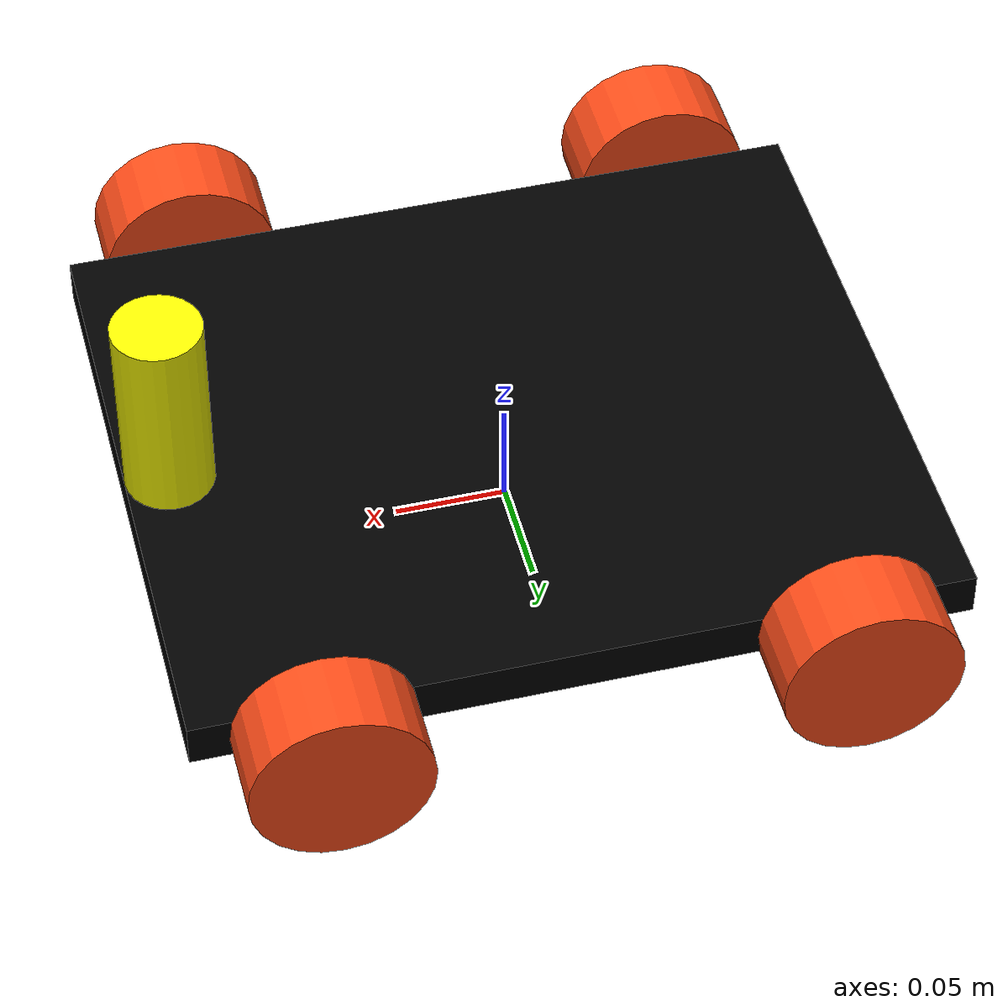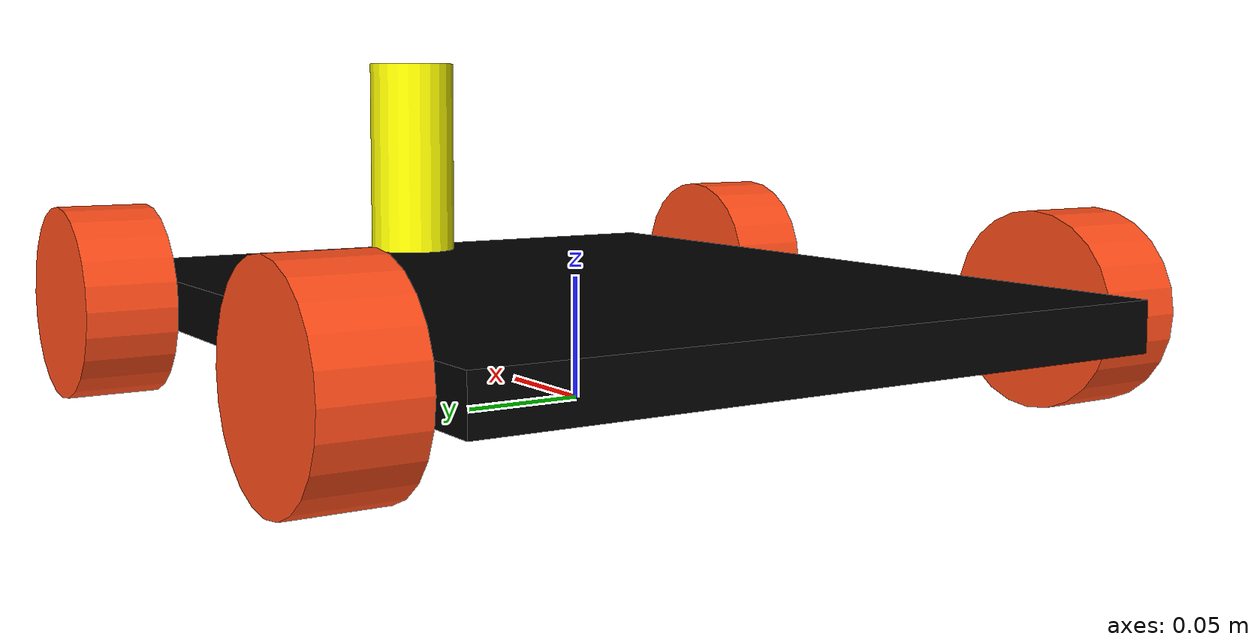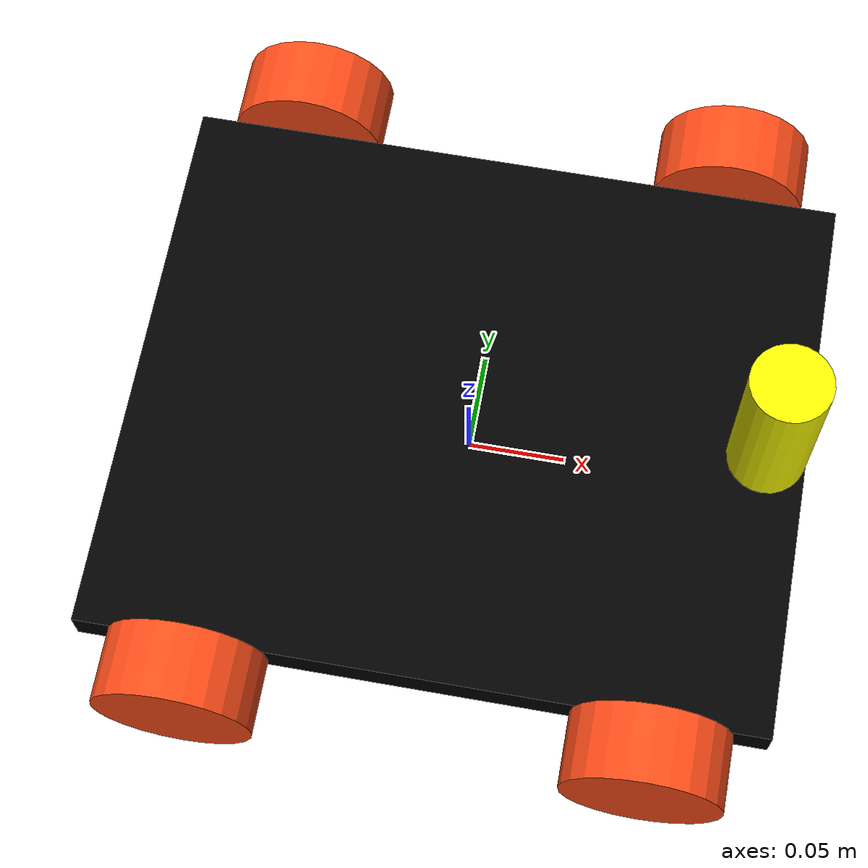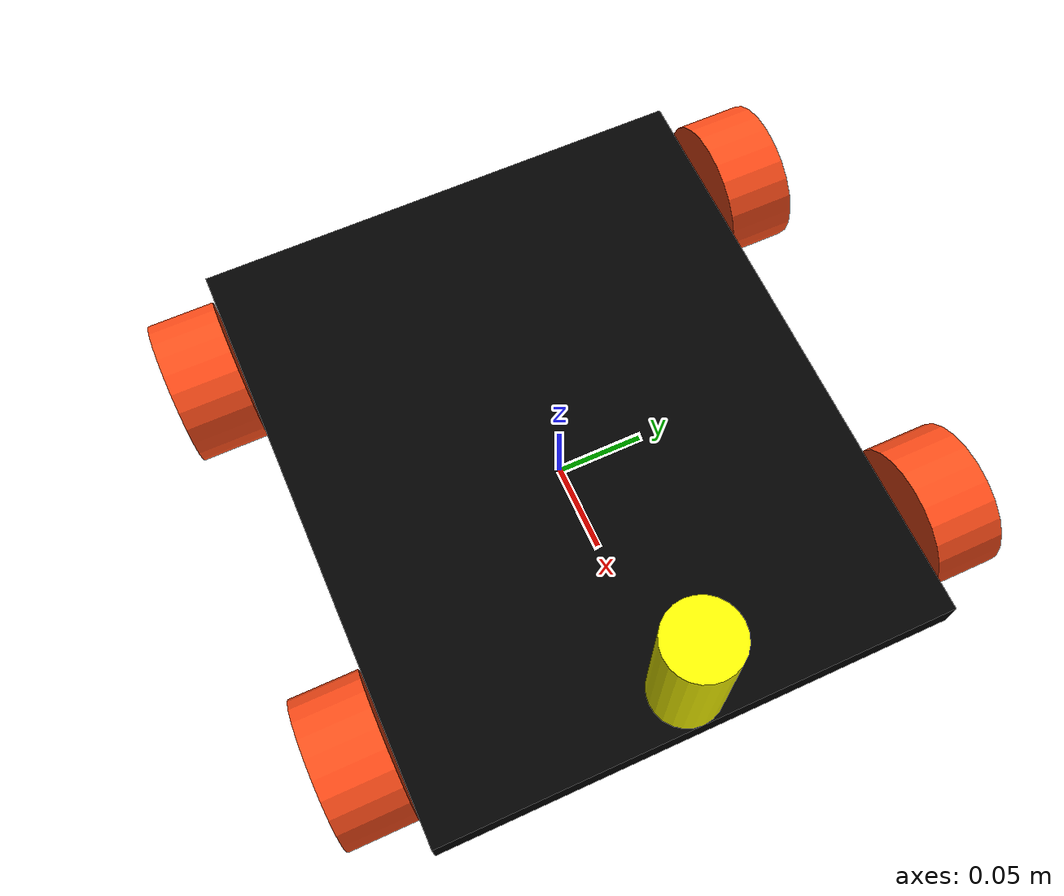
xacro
<?xml version="1.0"?>
<robot name="ugv" xmlns:xacro="http://www.ros.org/wiki/xacro">

    <xacro:arg name="is_sim" default="true"/>
    <xacro:include filename="$(find ugv_description)/urdf/ugv.macro.xacro"/>
    <xacro:ugv is_sim="$is_sim"/>

    <xacro:if value="$(arg is_sim)">
        <xacro:include filename="$(find ugv_control)/urdf/gazebo_control.xacro"/>
    </xacro:if>
    <xacro:unless value="$(arg is_sim)">
        <xacro:include filename="$(find ugv_control)/urdf/ros2_control.xacro"/>
    </xacro:unless>

</robot>

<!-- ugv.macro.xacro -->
<robot name="ugv" xmlns:xacro="http://www.ros.org/wiki/xacro">
    <xacro:macro name="ugv" params="is_sim">
        <xacro:include filename="$(find ugv_description)/urdf/ugv_core.xacro"/>

        <xacro:if value="$(arg is_sim)">
            <xacro:include filename="$(find ugv_description)/gazebo/gazebo.xacro"/>
            <xacro:include filename="$(find ugv_description)/gazebo/lidar.xacro"/>
        </xacro:if>

    </xacro:macro>
</robot>

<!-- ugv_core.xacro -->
<robot name="ugv" xmlns:xacro="http://www.ros.org/wiki/xacro">

    <xacro:include filename="$(find ugv_description)/gazebo/common_inertias.xacro" />

    <xacro:property name="wheel_radius" value="0.0395" />
    <xacro:property name="wheel_thickness" value="0.0369" />
    <xacro:property name="wheel_mass" value="0.05" />

    <xacro:property name="chassis_length" value="0.34" />
    <xacro:property name="chassis_width" value="0.285" />
    <xacro:property name="chassis_height" value="0.02" />
    <xacro:property name="chassis_mass" value="1.0" />
    <xacro:property name="chassis_offset_z" value="${wheel_radius}" />

    <xacro:property name="lidar_radius" value="0.02" />
    <xacro:property name="lidar_thickness" value="0.1" />
    <xacro:property name="lidar_mass" value="0.05" />

    <xacro:property name="edge_thickness" value="0.02" />
    <xacro:property name="edge_to_motor_mount" value="0.016" />
    <xacro:property name="motor_mount_width" value="0.0417" />
    <xacro:property name="motor_shaft_to_edge_x" value="${edge_thickness+edge_to_motor_mount+motor_mount_width/2}" />
    <xacro:property name="wheel_offset_x" value="${chassis_length/2-motor_shaft_to_edge_x}" />

    <xacro:property name="wheels_y_distance_edge_to_edge" value=".36"/>
    <xacro:property name="wheel_offset_y" value="${wheels_y_distance_edge_to_edge/2 - wheel_thickness/2}"/>

    <xacro:property name="wheel_offset_z" value="0.01" />

    <material name="orange">
        <color rgba="1 0.3 0.1 1" />
    </material>

    <material name="yellow">
        <color rgba="1 1 0 1" />
    </material>

    <material name="black">
        <color rgba="0 0 0 1" />
    </material>

    <xacro:macro name="wheel" params="prefix">
        <link name="${prefix}_wheel">
            <visual>
                <origin rpy="${pi/2} 0 0" xyz="0 0 0"/>
                <geometry>
                    <cylinder radius="${wheel_radius}" length="${wheel_thickness}" />
                </geometry>
                <material name="orange" />
            </visual>
            <collision>
                <origin rpy="${pi/2} 0 0" xyz="0 0 0"/>
                <geometry>
                    <cylinder radius="${wheel_radius}" length="${wheel_thickness}" />
                </geometry>
            </collision>
            <xacro:inertial_cylinder mass="${wheel_mass}" length="${wheel_thickness}"
                radius="${wheel_radius}">
                <origin xyz="0 0 0" rpy="0 0 0" />
            </xacro:inertial_cylinder>
        </link>
    </xacro:macro>

    <link name="base_link">
        <visual>
            <origin rpy="0 0 0" xyz="0 0 ${chassis_offset_z}"/>
            <geometry>
                <box size="${chassis_length} ${chassis_width} ${chassis_height}" />
            </geometry>
            <material name="black" />
        </visual>
        <collision>
            <origin rpy="0 0 0" xyz="0 0 ${chassis_offset_z}"/>
            <geometry>
                <box size="${chassis_length} ${chassis_width} ${chassis_height}" />
            </geometry>
        </collision>
        <xacro:inertial_box mass="${chassis_mass}" x="${chassis_length}" y="${chassis_width}"
            z="${chassis_height}">
            <origin rpy="0 0 0" xyz="0 0 ${chassis_offset_z}"/>
        </xacro:inertial_box>
    </link>

    <link name="base_footprint" />

    <joint name="base_footprint_joint" type="fixed">
        <parent link="base_link" />
        <child link="base_footprint" />
        <origin xyz="0 0 0" rpy="0 0 0" />
    </joint>

    <xacro:wheel prefix="front_right"  />

    <joint name="front_right_wheel_joint" type="continuous">
        <parent link="base_link" />
        <child link="front_right_wheel" />
        <origin xyz="${wheel_offset_x} ${-wheel_offset_y} ${wheel_radius}" />
        <axis xyz="0.0 1.0 0.0" />
    </joint>

    <xacro:wheel prefix="front_left" />

    <joint name="front_left_wheel_joint" type="continuous">
        <parent link="base_link" />
        <child link="front_left_wheel" />
        <origin xyz="${wheel_offset_x} ${wheel_offset_y} ${wheel_radius}" />
        <axis xyz="0.0 1.0 0.0" />
    </joint>

    <xacro:wheel prefix="rear_right"  />

    <joint name="rear_right_wheel_joint" type="continuous">
        <parent link="base_link" />
        <child link="rear_right_wheel" />
        <origin xyz="${-wheel_offset_x} ${-wheel_offset_y} ${wheel_radius}" />
        <axis xyz="-0.0 1.0 0.0" />
    </joint>

    <xacro:wheel prefix="rear_left" />

    <joint name="rear_left_wheel_joint" type="continuous">
        <parent link="base_link" />
        <child link="rear_left_wheel" />
        <origin xyz="${-wheel_offset_x} ${wheel_offset_y} ${wheel_radius}" />
        <axis xyz="0.0 1.0 0.0" />
    </joint>

    <link name="lidar_link">
        <visual>
            <origin xyz="0 0 0" rpy="0 0 0"/>
            <geometry>
                <cylinder radius="${lidar_radius}" length="${lidar_thickness}" />     </geometry>
            <material name="yellow"/>
        </visual>
        <collision>
            <origin xyz="0 0 0" rpy="0 0 0"/>
            <geometry>
                <cylinder radius="${lidar_radius}" length="${lidar_thickness}" />
            </geometry>
        </collision>
        <xacro:inertial_cylinder mass="${lidar_mass}" length="${lidar_thickness}"
            radius="${lidar_radius}">
            <origin xyz="0 0 0" rpy="0 0 0" />
        </xacro:inertial_cylinder>
    </link>

    <joint name="lidar_link_joint" type="fixed">
        <parent link="base_link"/>
        <child link="lidar_link"/>
        <origin xyz="${chassis_length/2-lidar_radius} 0 ${chassis_offset_z+lidar_thickness/2}" rpy="0 0 ${pi}"/>
    </joint>

</robot>

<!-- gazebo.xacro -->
<robot name="ugv" xmlns:xacro="http://www.ros.org/wiki/xacro">

    <xacro:property name="body_color" value="Gazebo/Silver"/>
    <xacro:property name="wheels_color" value="Gazebo/Yellow"/>

    <gazebo reference="base_link">
        <material>${body_color}</material>
        <mu1>0.2</mu1>
        <mu2>0.2</mu2>
        <self_collide>true</self_collide>
        <gravity>true</gravity>
    </gazebo>

    <gazebo reference="front_left_wheel">
        <material>${body_color}</material>
        <mu1>0.2</mu1>
        <mu2>0.2</mu2>
        <self_collide>true</self_collide>
    </gazebo>

    <gazebo reference="rear_left_wheel">
        <material>${body_color}</material>
        <mu1>0.2</mu1>
        <mu2>0.2</mu2>
        <self_collide>true</self_collide>
    </gazebo>

    <gazebo reference="rear_right_wheel">
        <material>${body_color}</material>
        <mu1>0.2</mu1>
        <mu2>0.2</mu2>
        <self_collide>true</self_collide>
    </gazebo>

    <gazebo reference="front_right_wheel">
        <material>${body_color}</material>
        <mu1>0.2</mu1>
        <mu2>0.2</mu2>
        <self_collide>true</self_collide>
    </gazebo>

</robot>
